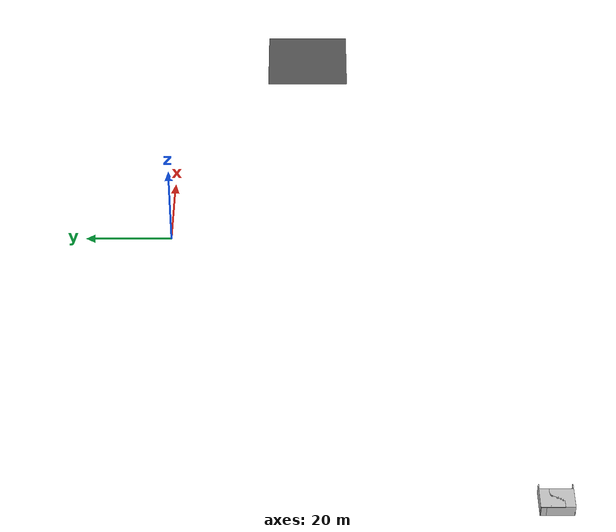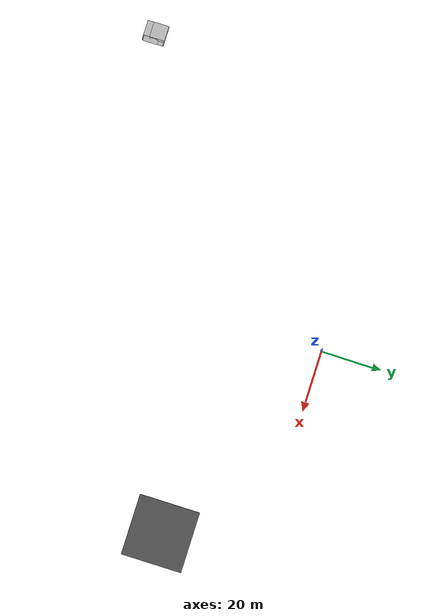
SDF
<sdf version="1.6">
 <world name="default">
  <model name="office2">
   <pose>-81.9632 -81.7145 0 0 -0 0</pose>
   <link name="Wall_21">
    <collision name="Wall_21_Collision">
     <geometry><box><size>6 0.15 2.5</size></box></geometry>
     <pose>0 0 1.25 0 -0 0</pose>
    </collision>
    <visual name="Wall_21_Visual">
     <pose>0 0 1.25 0 -0 0</pose>
     <geometry><box><size>6 0.15 2.5</size></box></geometry>
     <material>
      <script>
       <uri>model://office_env/materials/scripts</uri>
       <uri>model://office_env/materials/textures</uri>
       <name>wall</name>
      </script>
      <ambient>1 1 1 1</ambient>
     </material>
    </visual>
    <pose>-3.05 -0.55 0 0 0 -1.5708</pose>
   </link>
   <link name="Wall_22">
    <collision name="Wall_22_Collision">
     <geometry><box><size>6.25 0.15 2.5</size></box></geometry>
     <pose>0 0 1.25 0 -0 0</pose>
    </collision>
    <visual name="Wall_22_Visual">
     <pose>0 0 1.25 0 -0 0</pose>
     <geometry><box><size>6.25 0.15 2.5</size></box></geometry>
     <material>
      <script>
       <uri>model://office_env/materials/scripts</uri>
       <uri>model://office_env/materials/textures</uri>
       <name>wall</name>
      </script>
      <ambient>1 1 1 1</ambient>
     </material>
    </visual>
    <pose>0 -3.475 0 0 -0 0</pose>
   </link>
   <link name="Wall_24">
    <collision name="Wall_24_Collision">
     <geometry><box><size>1.25 0.15 2.5</size></box></geometry>
     <pose>0 0 1.25 0 -0 0</pose>
    </collision>
    <visual name="Wall_24_Visual">
     <pose>0 0 1.25 0 -0 0</pose>
     <geometry><box><size>1.25 0.15 2.5</size></box></geometry>
     <material>
      <script>
       <uri>model://office_env/materials/scripts</uri>
       <uri>model://office_env/materials/textures</uri>
       <name>wall</name>
      </script>
      <ambient>1 1 1 1</ambient>
     </material>
    </visual>
    <pose>-3.05 2.925 0 0 -0 1.5708</pose>
   </link>
   <link name="Wall_25">
    <collision name="Wall_25_Collision">
     <geometry><box><size>6.25 0.15 2.5</size></box></geometry>
     <pose>0 0 1.25 0 -0 0</pose>
    </collision>
    <visual name="Wall_25_Visual">
     <pose>0 0 1.25 0 -0 0</pose>
     <geometry><box><size>6.25 0.15 2.5</size></box></geometry>
     <material>
      <script>
       <uri>model://office_env/materials/scripts</uri>
       <uri>model://office_env/materials/textures</uri>
       <name>wall</name>
      </script>
      <ambient>1 1 1 1</ambient>
     </material>
    </visual>
    <pose>0 3.475 0 0 -0 0</pose>
   </link>
   <static>1</static>
  </model>
  <model name="asphalt_plane">
   <static>1</static>
   <link name="link">
    <collision name="collision"><geometry><box><size>20 20 0.1</size></box></geometry></collision>
    <visual name="visual">
     <cast_shadows>0</cast_shadows>
     <geometry><box><size>20 20 0.1</size></box></geometry>
     <material>
      <script>
       <uri>model://asphalt_plane/materials/scripts</uri>
       <uri>model://asphalt_plane/materials/textures</uri>
       <name>vrc/asphalt</name>
      </script>
     </material>
    </visual>
   </link>
   <pose>70.7475 -31.5972 0 0 -0 0</pose>
  </model>
  <model name="Floor_11">
   <link name="main">
    <pose>0 0 0.01 0 -0 0</pose>
    <collision name="main_Collision"><geometry><box><size>5 5 0.05</size></box></geometry></collision>
    <visual name="main_Visual">
     <geometry><box><size>5 5 0.05</size></box></geometry>
     <material>
      <script>
       <uri>model://Floor_verysmall/materials/scripts</uri>
       <uri>model://Floor_verysmall/materials/textures</uri>
       <name>floor</name>
      </script>
     </material>
    </visual>
   </link>
   <static>1</static>
   <pose>-81.1614 -82.7174 0 0 -0 0</pose>
  </model>
  <model name="Floor_12">
   <link name="main">
    <pose>0 0 0.01 0 -0 0</pose>
    <collision name="main_Collision"><geometry><box><size>5 5 0.05</size></box></geometry></collision>
    <visual name="main_Visual">
     <geometry><box><size>5 5 0.05</size></box></geometry>
     <material>
      <script>
       <uri>model://Floor_verysmall/materials/scripts</uri>
       <uri>model://Floor_verysmall/materials/textures</uri>
       <name>floor</name>
      </script>
     </material>
    </visual>
   </link>
   <static>1</static>
   <pose>-81.2158 -80.8143 0 0 -0 0</pose>
  </model>
  <model name="Floor_13">
   <link name="main">
    <pose>0 0 0.01 0 -0 0</pose>
    <collision name="main_Collision"><geometry><box><size>5 5 0.05</size></box></geometry></collision>
    <visual name="main_Visual">
     <geometry><box><size>5 5 0.05</size></box></geometry>
     <material>
      <script>
       <uri>model://Floor_verysmall/materials/scripts</uri>
       <uri>model://Floor_verysmall/materials/textures</uri>
       <name>floor</name>
      </script>
     </material>
    </visual>
   </link>
   <static>1</static>
   <pose>-82.4661 -82.6128 0 0 -0 0</pose>
  </model>
  <model name="Floor_14">
   <link name="main">
    <pose>0 0 0.01 0 -0 0</pose>
    <collision name="main_Collision"><geometry><box><size>5 5 0.05</size></box></geometry></collision>
    <visual name="main_Visual">
     <geometry><box><size>5 5 0.05</size></box></geometry>
     <material>
      <script>
       <uri>model://Floor_verysmall/materials/scripts</uri>
       <uri>model://Floor_verysmall/materials/textures</uri>
       <name>floor</name>
      </script>
     </material>
    </visual>
   </link>
   <static>1</static>
   <pose>-82.4472 -80.8042 0 0 -0 0</pose>
  </model>
  <model name="Floor_4_clone_0">
   <link name="main">
    <pose>0 0 0.01 0 -0 0</pose>
    <collision name="main_Collision"><geometry><box><size>5 5 0.05</size></box></geometry></collision>
    <visual name="main_Visual">
     <geometry><box><size>5 5 0.05</size></box></geometry>
     <material>
      <script>
       <uri>model://Floor_verysmall/materials/scripts</uri>
       <uri>model://Floor_verysmall/materials/textures</uri>
       <name>floor</name>
      </script>
     </material>
    </visual>
   </link>
   <static>1</static>
   <pose>-82.5699 -82.7493 2.5 0 -0 0</pose>
  </model>
  <model name="Floor_4_clone_1">
   <link name="main">
    <pose>0 0 0.01 0 -0 0</pose>
    <collision name="main_Collision"><geometry><box><size>5 5 0.05</size></box></geometry></collision>
    <visual name="main_Visual">
     <geometry><box><size>5 5 0.05</size></box></geometry>
     <material>
      <script>
       <uri>model://Floor_verysmall/materials/scripts</uri>
       <uri>model://Floor_verysmall/materials/textures</uri>
       <name>floor</name>
      </script>
     </material>
    </visual>
   </link>
   <static>1</static>
   <pose>-82.611 -80.6925 2.5 0 -0 0</pose>
  </model>
 </world>
</sdf>
